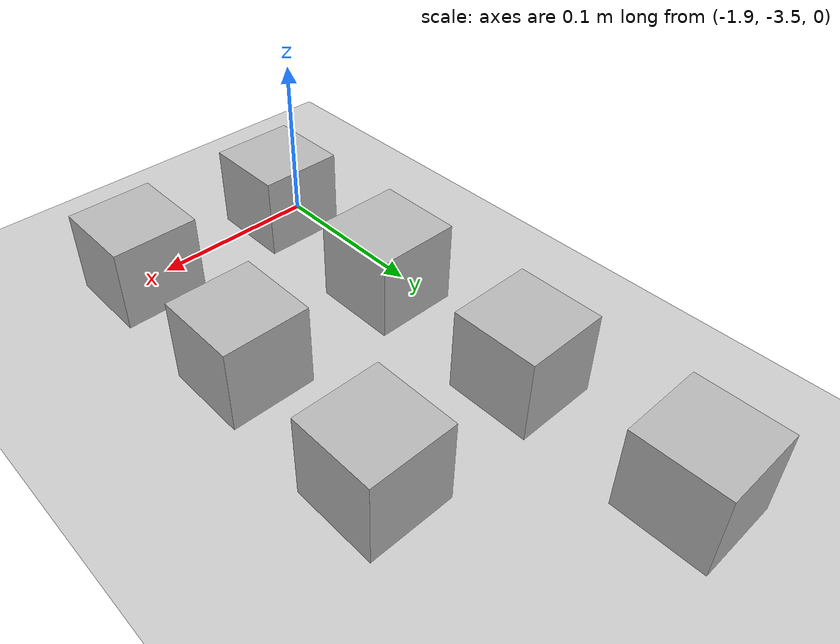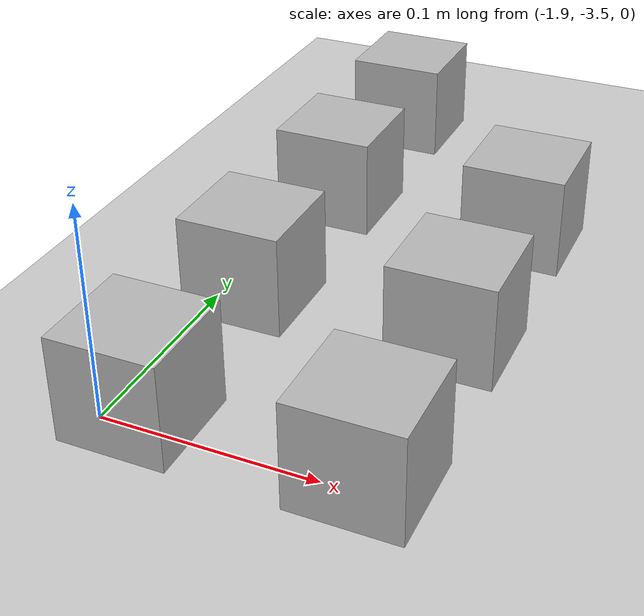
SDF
<sdf version="1.6">
 <world name="default">
  <model name="ground_plane">
   <static>1</static>
   <link name="link">
    <collision name="collision">
     <geometry><plane><normal>0 0 1</normal><size>100 100</size></plane></geometry>
     <surface><friction><ode><mu>100</mu><mu2>50</mu2></ode></friction></surface>
    </collision>
    <visual name="visual">
     <cast_shadows>0</cast_shadows>
     <geometry><plane><normal>0 0 1</normal><size>100 100</size></plane></geometry>
     <material>
      <script><uri>file://media/materials/scripts/gazebo.material</uri><name>Gazebo/Grey</name></script>
     </material>
    </visual>
   </link>
  </model>
  <model name="at454">
   <static>0</static>
   <link name="link">
    <inertial>
     <mass>0.01</mass>
     <inertia><ixx>4e-05</ixx><ixy>0</ixy><ixz>0</ixz><iyy>4e-05</iyy><iyz>0</iyz><izz>4e-05</izz></inertia>
    </inertial>
    <visual name="visual">
     <geometry><box><size>0.05 0.05 0.05</size></box></geometry>
     <material>
      <script>
       <uri>model://at0/materials/scripts</uri>
       <uri>model://at0/materials/textures</uri>
       <name>at0/Diffuse</name>
      </script>
     </material>
    </visual>
    <collision name="collision">
     <geometry><box><size>0.05 0.05 0.05</size></box></geometry>
     <surface><friction><ode><mu>0.8</mu><mu2>0.7</mu2></ode></friction></surface>
    </collision>
   </link>
   <pose>-1.88283 -3.49448 0.025 0 -0 0</pose>
  </model>
  <model name="at455">
   <static>0</static>
   <link name="link">
    <inertial>
     <mass>0.01</mass>
     <inertia><ixx>4e-05</ixx><ixy>0</ixy><ixz>0</ixz><iyy>4e-05</iyy><iyz>0</iyz><izz>4e-05</izz></inertia>
    </inertial>
    <visual name="visual">
     <geometry><box><size>0.05 0.05 0.05</size></box></geometry>
     <material>
      <script>
       <uri>model://at0/materials/scripts</uri>
       <uri>model://at0/materials/textures</uri>
       <name>at0/Diffuse</name>
      </script>
     </material>
    </visual>
    <collision name="collision">
     <geometry><box><size>0.05 0.05 0.05</size></box></geometry>
     <surface><friction><ode><mu>0.8</mu><mu2>0.7</mu2></ode></friction></surface>
    </collision>
   </link>
   <pose>-1.78283 -3.49448 0.025 0 -0 0</pose>
  </model>
  <model name="at462">
   <static>0</static>
   <link name="link">
    <inertial>
     <mass>0.01</mass>
     <inertia><ixx>4e-05</ixx><ixy>0</ixy><ixz>0</ixz><iyy>4e-05</iyy><iyz>0</iyz><izz>4e-05</izz></inertia>
    </inertial>
    <visual name="visual">
     <geometry><box><size>0.05 0.05 0.05</size></box></geometry>
     <material>
      <script>
       <uri>model://at0/materials/scripts</uri>
       <uri>model://at0/materials/textures</uri>
       <name>at0/Diffuse</name>
      </script>
     </material>
    </visual>
    <collision name="collision">
     <geometry><box><size>0.05 0.05 0.05</size></box></geometry>
     <surface><friction><ode><mu>0.8</mu><mu2>0.7</mu2></ode></friction></surface>
    </collision>
   </link>
   <pose>-1.88283 -3.39448 0.025 0 -0 0</pose>
  </model>
  <model name="at463">
   <static>0</static>
   <link name="link">
    <inertial>
     <mass>0.01</mass>
     <inertia><ixx>4e-05</ixx><ixy>0</ixy><ixz>0</ixz><iyy>4e-05</iyy><iyz>0</iyz><izz>4e-05</izz></inertia>
    </inertial>
    <visual name="visual">
     <geometry><box><size>0.05 0.05 0.05</size></box></geometry>
     <material>
      <script>
       <uri>model://at0/materials/scripts</uri>
       <uri>model://at0/materials/textures</uri>
       <name>at0/Diffuse</name>
      </script>
     </material>
    </visual>
    <collision name="collision">
     <geometry><box><size>0.05 0.05 0.05</size></box></geometry>
     <surface><friction><ode><mu>0.8</mu><mu2>0.7</mu2></ode></friction></surface>
    </collision>
   </link>
   <pose>-1.78283 -3.39448 0.025 0 -0 0</pose>
  </model>
  <model name="at470">
   <static>0</static>
   <link name="link">
    <inertial>
     <mass>0.01</mass>
     <inertia><ixx>4e-05</ixx><ixy>0</ixy><ixz>0</ixz><iyy>4e-05</iyy><iyz>0</iyz><izz>4e-05</izz></inertia>
    </inertial>
    <visual name="visual">
     <geometry><box><size>0.05 0.05 0.05</size></box></geometry>
     <material>
      <script>
       <uri>model://at0/materials/scripts</uri>
       <uri>model://at0/materials/textures</uri>
       <name>at0/Diffuse</name>
      </script>
     </material>
    </visual>
    <collision name="collision">
     <geometry><box><size>0.05 0.05 0.05</size></box></geometry>
     <surface><friction><ode><mu>0.8</mu><mu2>0.7</mu2></ode></friction></surface>
    </collision>
   </link>
   <pose>-1.88283 -3.29448 0.025 0 -0 0</pose>
  </model>
  <model name="at471">
   <static>0</static>
   <link name="link">
    <inertial>
     <mass>0.01</mass>
     <inertia><ixx>4e-05</ixx><ixy>0</ixy><ixz>0</ixz><iyy>4e-05</iyy><iyz>0</iyz><izz>4e-05</izz></inertia>
    </inertial>
    <visual name="visual">
     <geometry><box><size>0.05 0.05 0.05</size></box></geometry>
     <material>
      <script>
       <uri>model://at0/materials/scripts</uri>
       <uri>model://at0/materials/textures</uri>
       <name>at0/Diffuse</name>
      </script>
     </material>
    </visual>
    <collision name="collision">
     <geometry><box><size>0.05 0.05 0.05</size></box></geometry>
     <surface><friction><ode><mu>0.8</mu><mu2>0.7</mu2></ode></friction></surface>
    </collision>
   </link>
   <pose>-1.78283 -3.29448 0.025 0 -0 0</pose>
  </model>
  <model name="at478">
   <static>0</static>
   <link name="link">
    <inertial>
     <mass>0.01</mass>
     <inertia><ixx>4e-05</ixx><ixy>0</ixy><ixz>0</ixz><iyy>4e-05</iyy><iyz>0</iyz><izz>4e-05</izz></inertia>
    </inertial>
    <visual name="visual">
     <geometry><box><size>0.05 0.05 0.05</size></box></geometry>
     <material>
      <script>
       <uri>model://at0/materials/scripts</uri>
       <uri>model://at0/materials/textures</uri>
       <name>at0/Diffuse</name>
      </script>
     </material>
    </visual>
    <collision name="collision">
     <geometry><box><size>0.05 0.05 0.05</size></box></geometry>
     <surface><friction><ode><mu>0.8</mu><mu2>0.7</mu2></ode></friction></surface>
    </collision>
   </link>
   <pose>-1.88283 -3.19448 0.025 0 -0 0</pose>
  </model>
 </world>
</sdf>
